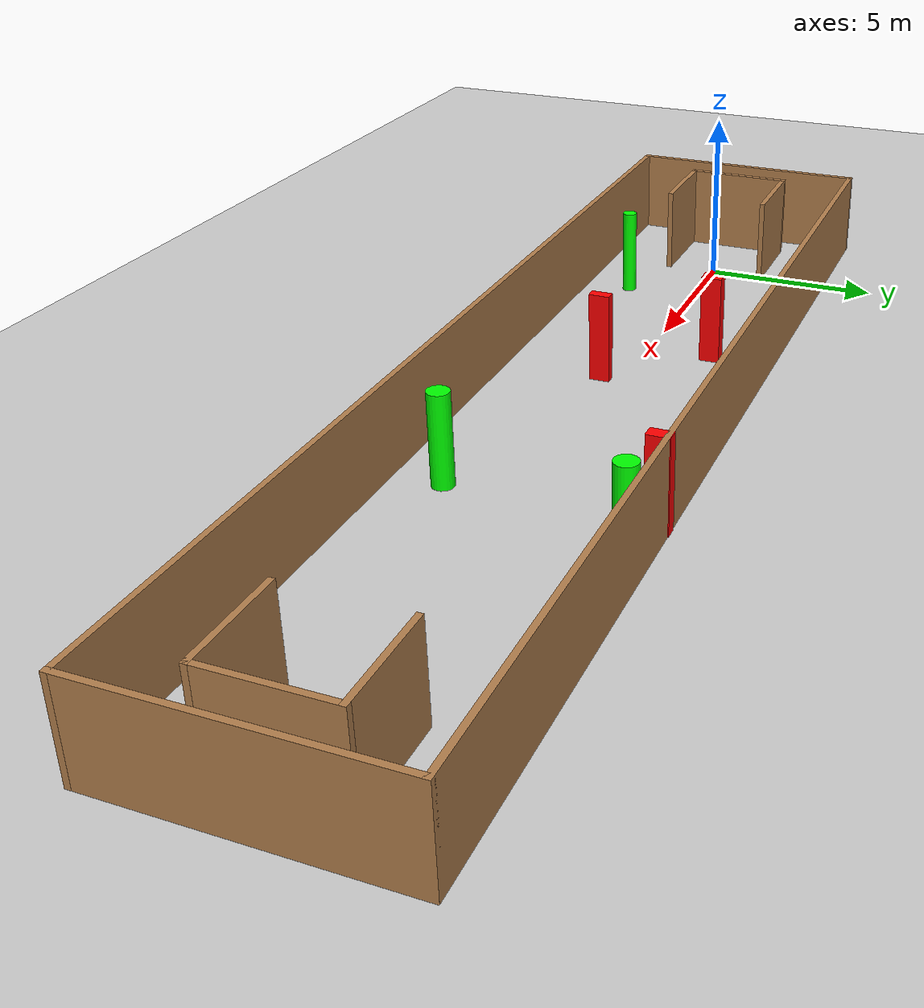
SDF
<sdf version="1.7">
 <world name="default">
  <light name="sun" type="directional">
   <pose>0 0 10 0 -0 0</pose>
   <diffuse>0.8 0.8 0.8 1</diffuse>
   <specular>0.2 0.2 0.2 1</specular>
   <attenuation>
    <range>1000</range>
    <constant>0.9</constant>
    <linear>0.01</linear>
    <quadratic>0.001</quadratic>
   </attenuation>
   <direction>-0.5 0.1 -0.9</direction>
   <spot><inner_angle>0</inner_angle><outer_angle>0</outer_angle><falloff>0</falloff></spot>
  </light>
  <model name="ground_plane">
   <static>1</static>
   <link name="link">
    <collision name="collision">
     <geometry><plane><normal>0 0 1</normal><size>100 100</size></plane></geometry>
     <surface>
      <contact><collide_bitmask>65535</collide_bitmask></contact>
      <friction><ode><mu>100</mu><mu2>50</mu2></ode></friction>
     </surface>
    </collision>
    <visual name="visual">
     <cast_shadows>0</cast_shadows>
     <geometry><plane><normal>0 0 1</normal><size>100 100</size></plane></geometry>
     <material>
      <script><uri>file://media/materials/scripts/gazebo.material</uri><name>Gazebo/Grey</name></script>
     </material>
    </visual>
   </link>
  </model>
  <gravity>0 0 -9.8</gravity>
  <magnetic_field>6e-06 2.3e-05 -4.2e-05</magnetic_field>
  <atmosphere type="adiabatic"/>
  <physics type="ode">
   <max_step_size>0.001</max_step_size>
   <real_time_factor>1</real_time_factor>
   <real_time_update_rate>1000</real_time_update_rate>
  </physics>
  <scene><ambient>0.4 0.4 0.4 1</ambient><background>0.7 0.7 0.7 1</background><shadows>1</shadows></scene>
  <spherical_coordinates>
   <surface_model>EARTH_WGS84</surface_model>
   <latitude_deg>0</latitude_deg>
   <longitude_deg>0</longitude_deg>
   <elevation>0</elevation>
   <heading_deg>0</heading_deg>
  </spherical_coordinates>
  <model name="my_base_walls">
   <link name="Wall_0">
    <collision name="Wall_0_Collision">
     <geometry><box><size>7.15 0.15 2.5</size></box></geometry>
     <pose>0 0 1.25 0 -0 0</pose>
    </collision>
    <visual name="Wall_0_Visual">
     <pose>0 0 1.25 0 -0 0</pose>
     <geometry><box><size>7.15 0.15 2.5</size></box></geometry>
     <material>
      <script><uri>file://media/materials/scripts/gazebo.material</uri><name>Gazebo/Wood</name></script>
      <ambient>1 1 1 1</ambient>
     </material>
     <meta><layer>0</layer></meta>
    </visual>
    <pose>-15 0 0 0 -0 1.5708</pose>
   </link>
   <link name="Wall_10">
    <collision name="Wall_10_Collision">
     <geometry><box><size>2.65 0.15 2.5</size></box></geometry>
     <pose>0 0 1.25 0 -0 0</pose>
    </collision>
    <visual name="Wall_10_Visual">
     <pose>0 0 1.25 0 -0 0</pose>
     <geometry><box><size>2.65 0.15 2.5</size></box></geometry>
     <material>
      <script><uri>file://media/materials/scripts/gazebo.material</uri><name>Gazebo/Wood</name></script>
      <ambient>1 1 1 1</ambient>
     </material>
     <meta><layer>0</layer></meta>
    </visual>
    <pose>-12.75 -1.5 0 0 -0 0</pose>
   </link>
   <link name="Wall_12">
    <collision name="Wall_12_Collision">
     <geometry><box><size>2.65 0.15 2.5</size></box></geometry>
     <pose>0 0 1.25 0 -0 0</pose>
    </collision>
    <visual name="Wall_12_Visual">
     <pose>0 0 1.25 0 -0 0</pose>
     <geometry><box><size>2.65 0.15 2.5</size></box></geometry>
     <material>
      <script><uri>file://media/materials/scripts/gazebo.material</uri><name>Gazebo/Wood</name></script>
      <ambient>1 1 1 1</ambient>
     </material>
     <meta><layer>0</layer></meta>
    </visual>
    <pose>-12.75 1.5 0 0 -0 0</pose>
   </link>
   <link name="Wall_14">
    <collision name="Wall_14_Collision">
     <geometry><box><size>3.15 0.15 2.5</size></box></geometry>
     <pose>0 0 1.25 0 -0 0</pose>
    </collision>
    <visual name="Wall_14_Visual">
     <pose>0 0 1.25 0 -0 0</pose>
     <geometry><box><size>3.15 0.15 2.5</size></box></geometry>
     <material>
      <script><uri>file://media/materials/scripts/gazebo.material</uri><name>Gazebo/Wood</name></script>
      <ambient>1 1 1 1</ambient>
     </material>
     <meta><layer>0</layer></meta>
    </visual>
    <pose>14 0 0 0 -0 -1.5708</pose>
   </link>
   <link name="Wall_15">
    <collision name="Wall_15_Collision">
     <geometry><box><size>2.65 0.15 2.5</size></box></geometry>
     <pose>0 0 1.25 0 -0 0</pose>
    </collision>
    <visual name="Wall_15_Visual">
     <pose>0 0 1.25 0 -0 0</pose>
     <geometry><box><size>2.65 0.15 2.5</size></box></geometry>
     <material>
      <script><uri>file://media/materials/scripts/gazebo.material</uri><name>Gazebo/Wood</name></script>
      <ambient>1 1 1 1</ambient>
     </material>
     <meta><layer>0</layer></meta>
    </visual>
    <pose>12.75 -1.5 0 0 -0 3.14159</pose>
   </link>
   <link name="Wall_17">
    <collision name="Wall_17_Collision">
     <geometry><box><size>2.65 0.15 2.5</size></box></geometry>
     <pose>0 0 1.25 0 -0 0</pose>
    </collision>
    <visual name="Wall_17_Visual">
     <pose>0 0 1.25 0 -0 0</pose>
     <geometry><box><size>2.65 0.15 2.5</size></box></geometry>
     <material>
      <script><uri>file://media/materials/scripts/gazebo.material</uri><name>Gazebo/Wood</name></script>
      <ambient>1 1 1 1</ambient>
     </material>
     <meta><layer>0</layer></meta>
    </visual>
    <pose>12.75 1.5 0 0 -0 3.14159</pose>
   </link>
   <link name="Wall_2">
    <collision name="Wall_2_Collision">
     <geometry><box><size>30.15 0.15 2.5</size></box></geometry>
     <pose>0 0 1.25 0 -0 0</pose>
    </collision>
    <visual name="Wall_2_Visual">
     <pose>0 0 1.25 0 -0 0</pose>
     <geometry><box><size>30.15 0.15 2.5</size></box></geometry>
     <material>
      <script><uri>file://media/materials/scripts/gazebo.material</uri><name>Gazebo/Wood</name></script>
      <ambient>1 1 1 1</ambient>
     </material>
     <meta><layer>0</layer></meta>
    </visual>
    <pose>-0 -3.5 0 0 -0 0</pose>
   </link>
   <link name="Wall_4">
    <collision name="Wall_4_Collision">
     <geometry><box><size>30.15 0.15 2.5</size></box></geometry>
     <pose>0 0 1.25 0 -0 0</pose>
    </collision>
    <visual name="Wall_4_Visual">
     <pose>0 0 1.25 0 -0 0</pose>
     <geometry><box><size>30.15 0.15 2.5</size></box></geometry>
     <material>
      <script><uri>file://media/materials/scripts/gazebo.material</uri><name>Gazebo/Wood</name></script>
      <ambient>1 1 1 1</ambient>
     </material>
     <meta><layer>0</layer></meta>
    </visual>
    <pose>-0 3.5 0 0 -0 0</pose>
   </link>
   <link name="Wall_6">
    <collision name="Wall_6_Collision">
     <geometry><box><size>7.15 0.15 2.5</size></box></geometry>
     <pose>0 0 1.25 0 -0 0</pose>
    </collision>
    <visual name="Wall_6_Visual">
     <pose>0 0 1.25 0 -0 0</pose>
     <geometry><box><size>7.15 0.15 2.5</size></box></geometry>
     <material>
      <script><uri>file://media/materials/scripts/gazebo.material</uri><name>Gazebo/Wood</name></script>
      <ambient>1 1 1 1</ambient>
     </material>
     <meta><layer>0</layer></meta>
    </visual>
    <pose>15 0 0 0 -0 -1.5708</pose>
   </link>
   <link name="Wall_9">
    <collision name="Wall_9_Collision">
     <geometry><box><size>3.15 0.15 2.5</size></box></geometry>
     <pose>0 0 1.25 0 -0 0</pose>
    </collision>
    <visual name="Wall_9_Visual">
     <pose>0 0 1.25 0 -0 0</pose>
     <geometry><box><size>3.15 0.15 2.5</size></box></geometry>
     <material>
      <script><uri>file://media/materials/scripts/gazebo.material</uri><name>Gazebo/Wood</name></script>
      <ambient>1 1 1 1</ambient>
     </material>
     <meta><layer>0</layer></meta>
    </visual>
    <pose>-14 0 0 0 -0 -1.5708</pose>
   </link>
   <static>1</static>
   <pose>11.5 0 0 0 -0 0</pose>
  </model>
  <model name="cylinder1">
   <static>1</static>
   <link name="link">
    <inertial>
     <mass>1</mass>
     <inertia><ixx>0.5</ixx><ixy>0</ixy><ixz>0</ixz><iyy>0.5</iyy><iyz>0</iyz><izz>1</izz></inertia>
    </inertial>
    <collision name="collision">
     <geometry><cylinder><radius>0.20543171726494625</radius><length>2.5</length></cylinder></geometry>
    </collision>
    <visual name="visual">
     <geometry><cylinder><radius>0.20543171726494625</radius><length>2.5</length></cylinder></geometry>
     <material>
      <ambient>0 1 0 1</ambient>
      <diffuse>0 1 0 1</diffuse>
      <specular>0.1 0.1 0.1 1</specular>
      <emissive>0 0 0 0</emissive>
     </material>
    </visual>
   </link>
   <pose>2.25965809084391 -2.087454979952302 1.25 0 0 0</pose>
  </model>
  <model name="cylinder2">
   <static>1</static>
   <link name="link">
    <inertial>
     <mass>1</mass>
     <inertia><ixx>0.5</ixx><ixy>0</ixy><ixz>0</ixz><iyy>0.5</iyy><iyz>0</iyz><izz>1</izz></inertia>
    </inertial>
    <collision name="collision">
     <geometry><cylinder><radius>0.2928147578025504</radius><length>2.5</length></cylinder></geometry>
    </collision>
    <visual name="visual">
     <geometry><cylinder><radius>0.2928147578025504</radius><length>2.5</length></cylinder></geometry>
     <material>
      <ambient>0 1 0 1</ambient>
      <diffuse>0 1 0 1</diffuse>
      <specular>0.1 0.1 0.1 1</specular>
      <emissive>0 0 0 0</emissive>
     </material>
    </visual>
   </link>
   <pose>15.168645385842789 -2.100138525048757 1.25 0 0 0</pose>
  </model>
  <model name="cylinder3">
   <static>1</static>
   <link name="link">
    <inertial>
     <mass>1</mass>
     <inertia><ixx>0.5</ixx><ixy>0</ixy><ixz>0</ixz><iyy>0.5</iyy><iyz>0</iyz><izz>1</izz></inertia>
    </inertial>
    <collision name="collision">
     <geometry><cylinder><radius>0.29764028366167217</radius><length>2.5</length></cylinder></geometry>
    </collision>
    <visual name="visual">
     <geometry><cylinder><radius>0.29764028366167217</radius><length>2.5</length></cylinder></geometry>
     <material>
      <ambient>0 1 0 1</ambient>
      <diffuse>0 1 0 1</diffuse>
      <specular>0.1 0.1 0.1 1</specular>
      <emissive>0 0 0 0</emissive>
     </material>
    </visual>
   </link>
   <pose>16.66610024185409 3.0294666377893282 1.25 0 0 0</pose>
  </model>
  <model name="box1">
   <static>1</static>
   <link name="link">
    <inertial>
     <mass>1</mass>
     <inertia><ixx>0.083</ixx><ixy>0</ixy><ixz>0</ixz><iyy>0.083</iyy><iyz>0</iyz><izz>0.083</izz></inertia>
    </inertial>
    <collision name="collision">
     <geometry><box><size>0.3462898688424932 0.591321369927484 2.5</size></box></geometry>
    </collision>
    <visual name="visual">
     <geometry><box><size>0.3462898688424932 0.591321369927484 2.5</size></box></geometry>
     <material>
      <ambient>1 0 0 1</ambient>
      <diffuse>1 0 0 1</diffuse>
      <specular>0.1 0.1 0.1 1</specular>
      <emissive>0 0 0 0</emissive>
     </material>
    </visual>
    <sensor name="my_contact" type="contact">
     <contact><collision>box_collision</collision><topic>__default_topic__</topic></contact>
    </sensor>
   </link>
   <pose>15.27347677806667 3.299500381180179 1.25 0 0 0</pose>
  </model>
  <model name="box2">
   <static>1</static>
   <link name="link">
    <inertial>
     <mass>1</mass>
     <inertia><ixx>0.083</ixx><ixy>0</ixy><ixz>0</ixz><iyy>0.083</iyy><iyz>0</iyz><izz>0.083</izz></inertia>
    </inertial>
    <collision name="collision">
     <geometry><box><size>0.2790203542943354 0.5649979371410876 2.5</size></box></geometry>
    </collision>
    <visual name="visual">
     <geometry><box><size>0.2790203542943354 0.5649979371410876 2.5</size></box></geometry>
     <material>
      <ambient>1 0 0 1</ambient>
      <diffuse>1 0 0 1</diffuse>
      <specular>0.1 0.1 0.1 1</specular>
      <emissive>0 0 0 0</emissive>
     </material>
    </visual>
    <sensor name="my_contact" type="contact">
     <contact><collision>box_collision</collision><topic>__default_topic__</topic></contact>
    </sensor>
   </link>
   <pose>8.536302888622494 -0.6499206719806012 1.25 0 0 0</pose>
  </model>
  <model name="box3">
   <static>1</static>
   <link name="link">
    <inertial>
     <mass>1</mass>
     <inertia><ixx>0.083</ixx><ixy>0</ixy><ixz>0</ixz><iyy>0.083</iyy><iyz>0</iyz><izz>0.083</izz></inertia>
    </inertial>
    <collision name="collision">
     <geometry><box><size>0.3852744404820069 0.5618590978534105 2.5</size></box></geometry>
    </collision>
    <visual name="visual">
     <geometry><box><size>0.3852744404820069 0.5618590978534105 2.5</size></box></geometry>
     <material>
      <ambient>1 0 0 1</ambient>
      <diffuse>1 0 0 1</diffuse>
      <specular>0.1 0.1 0.1 1</specular>
      <emissive>0 0 0 0</emissive>
     </material>
    </visual>
    <sensor name="my_contact" type="contact">
     <contact><collision>box_collision</collision><topic>__default_topic__</topic></contact>
    </sensor>
   </link>
   <pose>6.277165953764804 1.7831281399147745 1.25 0 0 0</pose>
  </model>
 </world>
</sdf>
